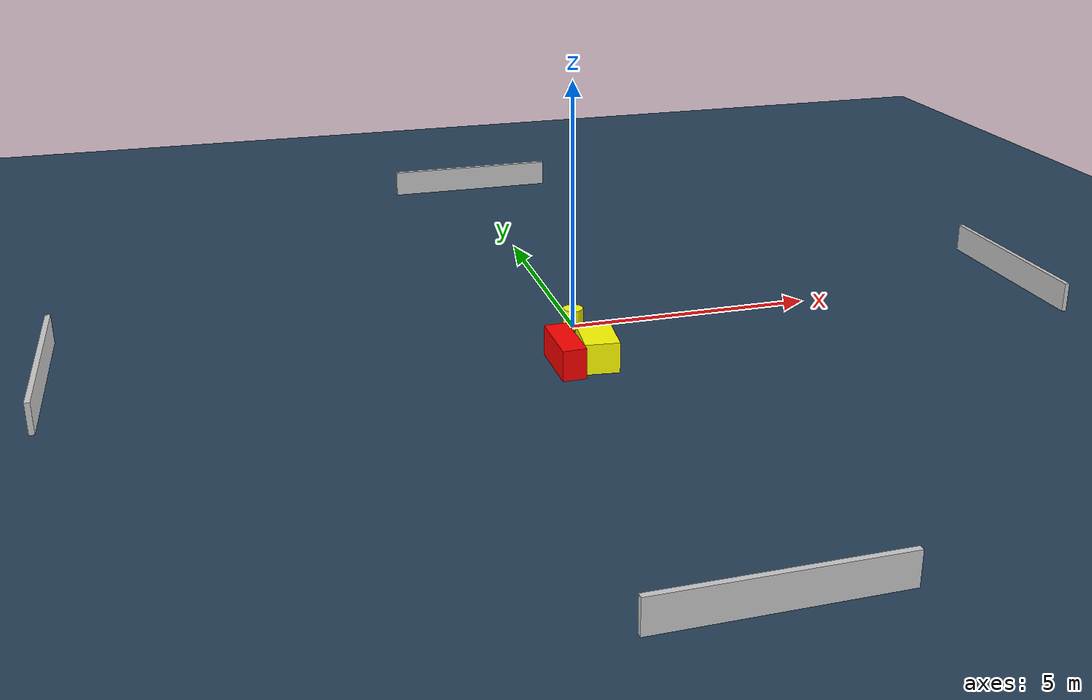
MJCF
<?xml version="1.0" ?>
<mujoco model="generated_environment">
  <option timestep="0.01" integrator="RK4" cone="elliptic"/>
  <default>
    <geom density="1"/>
  </default>
  <asset>
    <texture builtin="gradient" height="3072" name="skybox" rgb1="0.3 0.5 0.7" rgb2="0 0 0" type="skybox" width="512"/>
    <texture builtin="checker" height="300" name="groundplane" rgb1="0.2 0.3 0.4" rgb2="0.1 0.2 0.3" type="2d" width="300"/>
    <material name="groundplane" reflectance="0.2" texrepeat="5 5" texture="groundplane"/>
  </asset>
  <worldbody>
    <light dir="0 0 -1" directional="true" pos="0 0 1.5"/>
    <geom condim="3" friction="0.5 0.005 0.001" material="groundplane" name="floor" pos="0 0 0" size="0 0 0.05" type="plane"/>
    <body name="walls">
      <geom name="wall_1" condim="4" pos="-10.0 0.0 0.3" rgba="0.800000011920929 0.800000011920929 0.800000011920929 1.0" size="0.05 2.0 0.3" type="box"/>
      <geom name="wall_2" condim="4" pos="10.0 0.0 0.3" rgba="0.800000011920929 0.800000011920929 0.800000011920929 1.0" size="0.05 2.0 0.3" type="box"/>
      <geom name="wall_3" condim="4" pos="0.0 -10.0 0.3" rgba="0.800000011920929 0.800000011920929 0.800000011920929 1.0" size="2.0 0.05 0.3" type="box"/>
      <geom name="wall_4" condim="4" pos="0.0 10.0 0.3" rgba="0.800000011920929 0.800000011920929 0.800000011920929 1.0" size="2.0 0.05 0.3" type="box"/>
    </body>
    <body name="robot">
      <joint name="joint_x" type="slide" pos="0 0 0" axis="1 0 0"/>
      <joint name="joint_y" type="slide" pos="0 0 0" axis="0 1 0"/>
      <geom name="robot" type="cylinder" pos="0.0 0.0 0.2" size="0.2 0.2 0.0" mass="5.0" friction="1.0 0.005 0.0001" condim="4" rgba="1.0 1.0 0.0 1.0"/>
    </body>
    <body name="obstacle_1_movable">
      <geom name="obstacle_1_movable" condim="4" pos="-0.04838618671127563 -1.8231033094114835 0.3" euler="0 0 174.11424555073887" friction="0.0 0.005 0.001" rgba="1.0 1.0 0.0 1.0" size="0.3325356449252287 0.4935232558322061 0.3" type="box" mass="0.1"/>
      <joint type="free"/>
    </body>
    <body name="obstacle_2_static">
      <geom name="obstacle_2_static" condim="4" pos="-0.6731344095408959 -1.7988594173161696 0.3" euler="0 0 270.7063731846941" friction="0.0 0.005 0.001" rgba="1.0 0.0 0.0 1.0" size="0.6396805592528589 0.2305846818560722 0.3" type="box"/>
    </body>
  </worldbody>
  <actuator>
    <motor name="actuator_x" joint="joint_x" gear="1" ctrlrange="-1 1"/>
    <motor name="actuator_y" joint="joint_y" gear="1" ctrlrange="-1 1"/>
  </actuator>
</mujoco>
